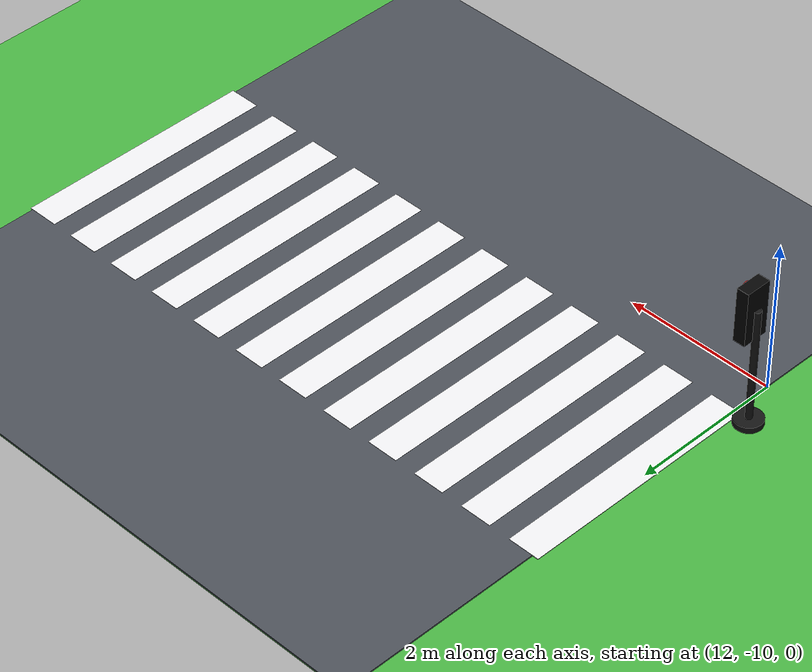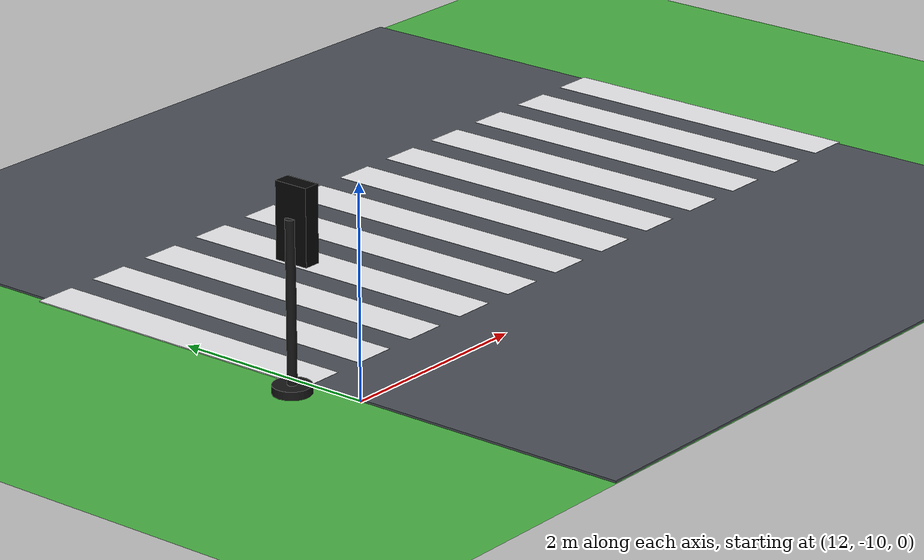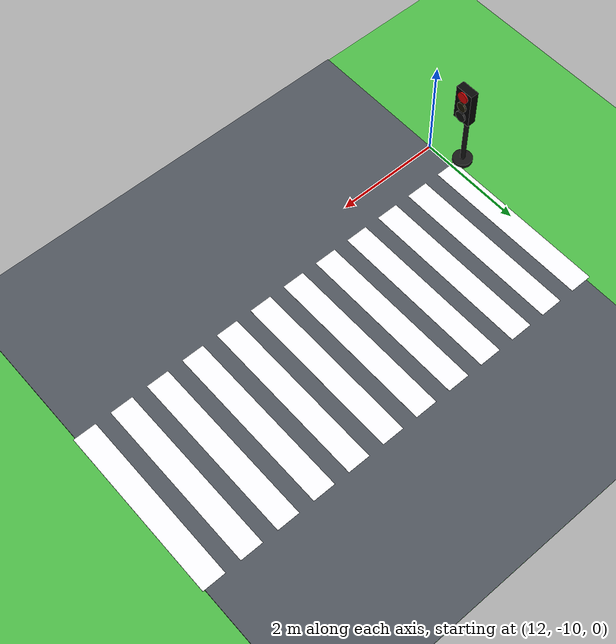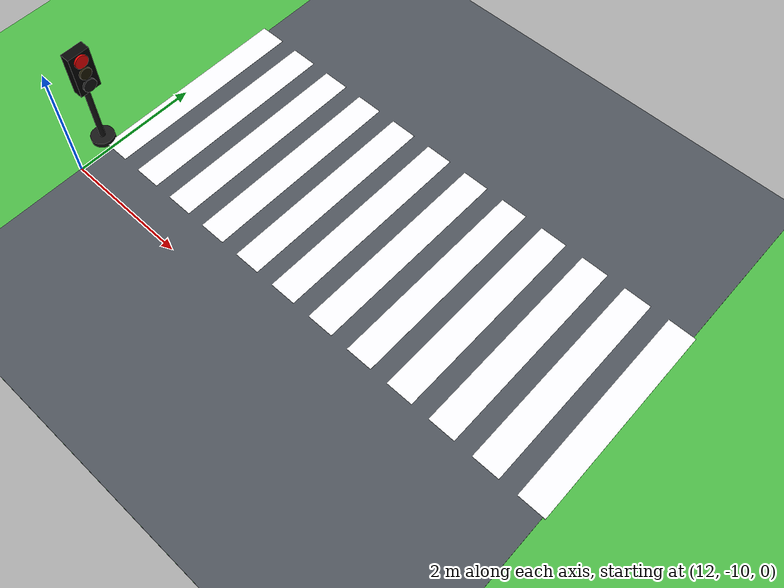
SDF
<sdf version="1.10">
 <world name="city_second">
  <model name="ground_plane">
   <static>true</static>
   <link name="link">
    <collision name="collision">
     <geometry><plane><normal>0 0 1</normal><size>300 300</size></plane></geometry>
    </collision>
    <visual name="visual">
     <geometry><plane><normal>0 0 1</normal><size>300 300</size></plane></geometry>
     <material>
      <ambient>0.280000001 0.689999998 0.25999999 1</ambient>
      <diffuse>0.280000001 0.689999998 0.25999999 1</diffuse>
      <specular>0.0299999993 0.0299999993 0.0299999993 1</specular>
     </material>
    </visual>
    <inertial>
     <mass>1</mass>
     <inertia><ixx>1</ixx><ixy>0</ixy><ixz>0</ixz><iyy>1</iyy><iyz>0</iyz><izz>1</izz></inertia>
    </inertial>
   </link>
  </model>
  <model name="road_v_2">
   <static>true</static>
   <pose>16 0 0.01 0 0 0</pose>
   <link name="link">
    <collision name="collision"><geometry><box><size>8 84 0.02</size></box></geometry></collision>
    <visual name="visual">
     <geometry><box><size>8 84 0.02</size></box></geometry>
     <material>
      <ambient>0.289999992 0.310000002 0.340000004 1</ambient>
      <diffuse>0.289999992 0.310000002 0.340000004 1</diffuse>
      <specular>0.0299999993 0.0299999993 0.0299999993 1</specular>
     </material>
    </visual>
    <inertial>
     <mass>1</mass>
     <inertia><ixx>1</ixx><ixy>0</ixy><ixz>0</ixz><iyy>1</iyy><iyz>0</iyz><izz>1</izz></inertia>
    </inertial>
   </link>
  </model>
  <model name="crosswalk_h_1_1_south_7_1">
   <static>true</static>
   <pose>15.9758 -7.8596300000000001 0.017000000000000001 0 0 0</pose>
   <link name="stripe_1">
    <collision name="collision">
     <geometry><box><size>0.41999999999999998 3.2000000000000002 0.01</size></box></geometry>
    </collision>
    <visual name="visual">
     <geometry><box><size>0.41999999999999998 3.2000000000000002 0.01</size></box></geometry>
     <material>
      <ambient>0.920000017 0.920000017 0.930000007 1</ambient>
      <diffuse>0.920000017 0.920000017 0.930000007 1</diffuse>
      <specular>0.0299999993 0.0299999993 0.0299999993 1</specular>
     </material>
    </visual>
    <pose>-3.8500000000000001 0 0 0 0 0</pose>
    <inertial>
     <mass>1</mass>
     <inertia><ixx>1</ixx><ixy>0</ixy><ixz>0</ixz><iyy>1</iyy><iyz>0</iyz><izz>1</izz></inertia>
    </inertial>
   </link>
   <link name="stripe_2">
    <collision name="collision">
     <geometry><box><size>0.41999999999999998 3.2000000000000002 0.01</size></box></geometry>
    </collision>
    <visual name="visual">
     <geometry><box><size>0.41999999999999998 3.2000000000000002 0.01</size></box></geometry>
     <material>
      <ambient>0.920000017 0.920000017 0.930000007 1</ambient>
      <diffuse>0.920000017 0.920000017 0.930000007 1</diffuse>
      <specular>0.0299999993 0.0299999993 0.0299999993 1</specular>
     </material>
    </visual>
    <pose>-3.1500000000000004 0 0 0 0 0</pose>
    <inertial>
     <mass>1</mass>
     <inertia><ixx>1</ixx><ixy>0</ixy><ixz>0</ixz><iyy>1</iyy><iyz>0</iyz><izz>1</izz></inertia>
    </inertial>
   </link>
   <link name="stripe_3">
    <collision name="collision">
     <geometry><box><size>0.41999999999999998 3.2000000000000002 0.01</size></box></geometry>
    </collision>
    <visual name="visual">
     <geometry><box><size>0.41999999999999998 3.2000000000000002 0.01</size></box></geometry>
     <material>
      <ambient>0.920000017 0.920000017 0.930000007 1</ambient>
      <diffuse>0.920000017 0.920000017 0.930000007 1</diffuse>
      <specular>0.0299999993 0.0299999993 0.0299999993 1</specular>
     </material>
    </visual>
    <pose>-2.4499999999999993 0 0 0 0 0</pose>
    <inertial>
     <mass>1</mass>
     <inertia><ixx>1</ixx><ixy>0</ixy><ixz>0</ixz><iyy>1</iyy><iyz>0</iyz><izz>1</izz></inertia>
    </inertial>
   </link>
   <link name="stripe_4">
    <collision name="collision">
     <geometry><box><size>0.41999999999999998 3.2000000000000002 0.01</size></box></geometry>
    </collision>
    <visual name="visual">
     <geometry><box><size>0.41999999999999998 3.2000000000000002 0.01</size></box></geometry>
     <material>
      <ambient>0.920000017 0.920000017 0.930000007 1</ambient>
      <diffuse>0.920000017 0.920000017 0.930000007 1</diffuse>
      <specular>0.0299999993 0.0299999993 0.0299999993 1</specular>
     </material>
    </visual>
    <pose>-1.75 0 0 0 0 0</pose>
    <inertial>
     <mass>1</mass>
     <inertia><ixx>1</ixx><ixy>0</ixy><ixz>0</ixz><iyy>1</iyy><iyz>0</iyz><izz>1</izz></inertia>
    </inertial>
   </link>
   <link name="stripe_5">
    <collision name="collision">
     <geometry><box><size>0.41999999999999998 3.2000000000000002 0.01</size></box></geometry>
    </collision>
    <visual name="visual">
     <geometry><box><size>0.41999999999999998 3.2000000000000002 0.01</size></box></geometry>
     <material>
      <ambient>0.920000017 0.920000017 0.930000007 1</ambient>
      <diffuse>0.920000017 0.920000017 0.930000007 1</diffuse>
      <specular>0.0299999993 0.0299999993 0.0299999993 1</specular>
     </material>
    </visual>
    <pose>-1.0500000000000007 0 0 0 0 0</pose>
    <inertial>
     <mass>1</mass>
     <inertia><ixx>1</ixx><ixy>0</ixy><ixz>0</ixz><iyy>1</iyy><iyz>0</iyz><izz>1</izz></inertia>
    </inertial>
   </link>
   <link name="stripe_6">
    <collision name="collision">
     <geometry><box><size>0.41999999999999998 3.2000000000000002 0.01</size></box></geometry>
    </collision>
    <visual name="visual">
     <geometry><box><size>0.41999999999999998 3.2000000000000002 0.01</size></box></geometry>
     <material>
      <ambient>0.920000017 0.920000017 0.930000007 1</ambient>
      <diffuse>0.920000017 0.920000017 0.930000007 1</diffuse>
      <specular>0.0299999993 0.0299999993 0.0299999993 1</specular>
     </material>
    </visual>
    <pose>-0.34999999999999964 0 0 0 0 0</pose>
    <inertial>
     <mass>1</mass>
     <inertia><ixx>1</ixx><ixy>0</ixy><ixz>0</ixz><iyy>1</iyy><iyz>0</iyz><izz>1</izz></inertia>
    </inertial>
   </link>
   <link name="stripe_7">
    <collision name="collision">
     <geometry><box><size>0.41999999999999998 3.2000000000000002 0.01</size></box></geometry>
    </collision>
    <visual name="visual">
     <geometry><box><size>0.41999999999999998 3.2000000000000002 0.01</size></box></geometry>
     <material>
      <ambient>0.920000017 0.920000017 0.930000007 1</ambient>
      <diffuse>0.920000017 0.920000017 0.930000007 1</diffuse>
      <specular>0.0299999993 0.0299999993 0.0299999993 1</specular>
     </material>
    </visual>
    <pose>0.35000000000000142 0 0 0 0 0</pose>
    <inertial>
     <mass>1</mass>
     <inertia><ixx>1</ixx><ixy>0</ixy><ixz>0</ixz><iyy>1</iyy><iyz>0</iyz><izz>1</izz></inertia>
    </inertial>
   </link>
   <link name="stripe_8">
    <collision name="collision">
     <geometry><box><size>0.41999999999999998 3.2000000000000002 0.01</size></box></geometry>
    </collision>
    <visual name="visual">
     <geometry><box><size>0.41999999999999998 3.2000000000000002 0.01</size></box></geometry>
     <material>
      <ambient>0.920000017 0.920000017 0.930000007 1</ambient>
      <diffuse>0.920000017 0.920000017 0.930000007 1</diffuse>
      <specular>0.0299999993 0.0299999993 0.0299999993 1</specular>
     </material>
    </visual>
    <pose>1.0500000000000007 0 0 0 0 0</pose>
    <inertial>
     <mass>1</mass>
     <inertia><ixx>1</ixx><ixy>0</ixy><ixz>0</ixz><iyy>1</iyy><iyz>0</iyz><izz>1</izz></inertia>
    </inertial>
   </link>
   <link name="stripe_9">
    <collision name="collision">
     <geometry><box><size>0.41999999999999998 3.2000000000000002 0.01</size></box></geometry>
    </collision>
    <visual name="visual">
     <geometry><box><size>0.41999999999999998 3.2000000000000002 0.01</size></box></geometry>
     <material>
      <ambient>0.920000017 0.920000017 0.930000007 1</ambient>
      <diffuse>0.920000017 0.920000017 0.930000007 1</diffuse>
      <specular>0.0299999993 0.0299999993 0.0299999993 1</specular>
     </material>
    </visual>
    <pose>1.75 0 0 0 0 0</pose>
    <inertial>
     <mass>1</mass>
     <inertia><ixx>1</ixx><ixy>0</ixy><ixz>0</ixz><iyy>1</iyy><iyz>0</iyz><izz>1</izz></inertia>
    </inertial>
   </link>
   <link name="stripe_10">
    <collision name="collision">
     <geometry><box><size>0.41999999999999998 3.2000000000000002 0.01</size></box></geometry>
    </collision>
    <visual name="visual">
     <geometry><box><size>0.41999999999999998 3.2000000000000002 0.01</size></box></geometry>
     <material>
      <ambient>0.920000017 0.920000017 0.930000007 1</ambient>
      <diffuse>0.920000017 0.920000017 0.930000007 1</diffuse>
      <specular>0.0299999993 0.0299999993 0.0299999993 1</specular>
     </material>
    </visual>
    <pose>2.4499999999999993 0 0 0 0 0</pose>
    <inertial>
     <mass>1</mass>
     <inertia><ixx>1</ixx><ixy>0</ixy><ixz>0</ixz><iyy>1</iyy><iyz>0</iyz><izz>1</izz></inertia>
    </inertial>
   </link>
   <link name="stripe_11">
    <collision name="collision">
     <geometry><box><size>0.41999999999999998 3.2000000000000002 0.01</size></box></geometry>
    </collision>
    <visual name="visual">
     <geometry><box><size>0.41999999999999998 3.2000000000000002 0.01</size></box></geometry>
     <material>
      <ambient>0.920000017 0.920000017 0.930000007 1</ambient>
      <diffuse>0.920000017 0.920000017 0.930000007 1</diffuse>
      <specular>0.0299999993 0.0299999993 0.0299999993 1</specular>
     </material>
    </visual>
    <pose>3.1499999999999986 0 0 0 0 0</pose>
    <inertial>
     <mass>1</mass>
     <inertia><ixx>1</ixx><ixy>0</ixy><ixz>0</ixz><iyy>1</iyy><iyz>0</iyz><izz>1</izz></inertia>
    </inertial>
   </link>
   <link name="stripe_12">
    <collision name="collision">
     <geometry><box><size>0.41999999999999998 3.2000000000000002 0.01</size></box></geometry>
    </collision>
    <visual name="visual">
     <geometry><box><size>0.41999999999999998 3.2000000000000002 0.01</size></box></geometry>
     <material>
      <ambient>0.920000017 0.920000017 0.930000007 1</ambient>
      <diffuse>0.920000017 0.920000017 0.930000007 1</diffuse>
      <specular>0.0299999993 0.0299999993 0.0299999993 1</specular>
     </material>
    </visual>
    <pose>3.8500000000000014 0 0 0 0 0</pose>
    <inertial>
     <mass>1</mass>
     <inertia><ixx>1</ixx><ixy>0</ixy><ixz>0</ixz><iyy>1</iyy><iyz>0</iyz><izz>1</izz></inertia>
    </inertial>
   </link>
  </model>
  <model name="simple_traffic_light_red_east_2">
   <static>true</static>
   <pose>11.774926698468439 -9.4165716174160607 -1.3877787807814457e-17 0 0 -1.5707999672671711</pose>
   <link name="base">
    <pose>0 0 0.040000000000000001 0 0 0</pose>
    <collision name="collision">
     <geometry>
      <cylinder><radius>0.17999999999999999</radius><length>0.080000000000000002</length></cylinder>
     </geometry>
    </collision>
    <visual name="visual">
     <geometry>
      <cylinder><radius>0.17999999999999999</radius><length>0.080000000000000002</length></cylinder>
     </geometry>
     <material>
      <ambient>0.0799999982 0.0799999982 0.0799999982 1</ambient>
      <diffuse>0.0799999982 0.0799999982 0.0799999982 1</diffuse>
      <specular>0.150000006 0.150000006 0.150000006 1</specular>
      <emissive>0 0 0 1</emissive>
     </material>
    </visual>
    <inertial>
     <mass>1</mass>
     <inertia><ixx>1</ixx><ixy>0</ixy><ixz>0</ixz><iyy>1</iyy><iyz>0</iyz><izz>1</izz></inertia>
    </inertial>
   </link>
   <link name="pole">
    <pose>-7.1054273576010019e-15 8.8817841970012523e-15 0.80000000000000004 0 0 -3.3306690738754696e-16</pose>
    <collision name="collision">
     <geometry>
      <cylinder><radius>0.044999999999999998</radius><length>1.6000000000000001</length></cylinder>
     </geometry>
    </collision>
    <visual name="visual">
     <geometry>
      <cylinder><radius>0.044999999999999998</radius><length>1.6000000000000001</length></cylinder>
     </geometry>
     <material>
      <ambient>0.0799999982 0.0799999982 0.0799999982 1</ambient>
      <diffuse>0.0799999982 0.0799999982 0.0799999982 1</diffuse>
      <specular>0.150000006 0.150000006 0.150000006 1</specular>
      <emissive>0 0 0 1</emissive>
     </material>
    </visual>
    <inertial>
     <mass>1</mass>
     <inertia><ixx>1</ixx><ixy>0</ixy><ixz>0</ixz><iyy>1</iyy><iyz>0</iyz><izz>1</izz></inertia>
    </inertial>
   </link>
   <link name="signal_box">
    <pose>8.8817841970012523e-15 0.090000000000005187 1.5500000000000003 0 0 -3.3306690738754696e-16</pose>
    <collision name="collision">
     <geometry><box><size>0.34000000000000002 0.16 0.71999999999999997</size></box></geometry>
    </collision>
    <visual name="visual">
     <geometry><box><size>0.34000000000000002 0.16 0.71999999999999997</size></box></geometry>
     <material>
      <ambient>0.0199999996 0.0199999996 0.0199999996 1</ambient>
      <diffuse>0.0199999996 0.0199999996 0.0199999996 1</diffuse>
      <specular>0.150000006 0.150000006 0.150000006 1</specular>
      <emissive>0 0 0 1</emissive>
     </material>
    </visual>
    <inertial>
     <mass>1</mass>
     <inertia><ixx>1</ixx><ixy>0</ixy><ixz>0</ixz><iyy>1</iyy><iyz>0</iyz><izz>1</izz></inertia>
    </inertial>
   </link>
   <link name="red_lens">
    <pose>-5.3290705182007514e-15 0.18100000000000804 1.78 1.5707963267999998 7.8504622930783579e-17 1.3345785898814093e-15</pose>
    <collision name="collision">
     <geometry><cylinder><radius>0.105</radius><length>0.035000000000000003</length></cylinder></geometry>
    </collision>
    <visual name="visual">
     <geometry><cylinder><radius>0.105</radius><length>0.035000000000000003</length></cylinder></geometry>
     <material>
      <ambient>1 0.0199999996 0.0199999996 1</ambient>
      <diffuse>1 0.0199999996 0.0199999996 1</diffuse>
      <specular>0.150000006 0.150000006 0.150000006 1</specular>
      <emissive>1 0.0199999996 0.0199999996 1</emissive>
     </material>
    </visual>
    <inertial>
     <mass>1</mass>
     <inertia><ixx>1</ixx><ixy>0</ixy><ixz>0</ixz><iyy>1</iyy><iyz>0</iyz><izz>1</izz></inertia>
    </inertial>
   </link>
   <link name="yellow_lens">
    <pose>-5.3290705182007514e-15 0.18200000000000394 1.5500000000000003 1.5707963267999998 7.8504622930783579e-17 1.3345785898814093e-15</pose>
    <collision name="collision">
     <geometry>
      <cylinder><radius>0.095000000000000001</radius><length>0.035000000000000003</length></cylinder>
     </geometry>
    </collision>
    <visual name="visual">
     <geometry>
      <cylinder><radius>0.095000000000000001</radius><length>0.035000000000000003</length></cylinder>
     </geometry>
     <material>
      <ambient>0.119999997 0.100000001 0.0199999996 1</ambient>
      <diffuse>0.119999997 0.100000001 0.0199999996 1</diffuse>
      <specular>0.150000006 0.150000006 0.150000006 1</specular>
      <emissive>0 0 0 1</emissive>
     </material>
    </visual>
    <inertial>
     <mass>1</mass>
     <inertia><ixx>1</ixx><ixy>0</ixy><ixz>0</ixz><iyy>1</iyy><iyz>0</iyz><izz>1</izz></inertia>
    </inertial>
   </link>
   <link name="green_lens">
    <pose>1.7763568394002505e-15 0.18300000000000871 1.3199999999999998 1.5707963267999998 7.8504622930783579e-17 1.3345785898814093e-15</pose>
    <collision name="collision">
     <geometry><cylinder><radius>0.105</radius><length>0.035000000000000003</length></cylinder></geometry>
    </collision>
    <visual name="visual">
     <geometry><cylinder><radius>0.105</radius><length>0.035000000000000003</length></cylinder></geometry>
     <material>
      <ambient>0.0799999982 0.0799999982 0.0799999982 1</ambient>
      <diffuse>0.0799999982 0.0799999982 0.0799999982 1</diffuse>
      <specular>0.150000006 0.150000006 0.150000006 1</specular>
      <emissive>0 0 0 1</emissive>
     </material>
    </visual>
    <inertial>
     <mass>1</mass>
     <inertia><ixx>1</ixx><ixy>0</ixy><ixz>0</ixz><iyy>1</iyy><iyz>0</iyz><izz>1</izz></inertia>
    </inertial>
   </link>
  </model>
 </world>
</sdf>
